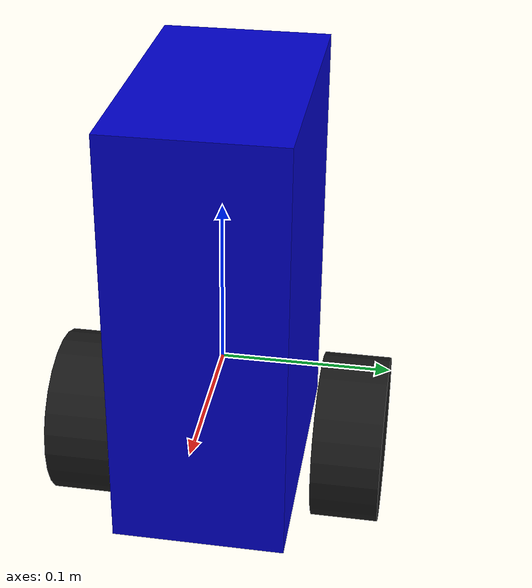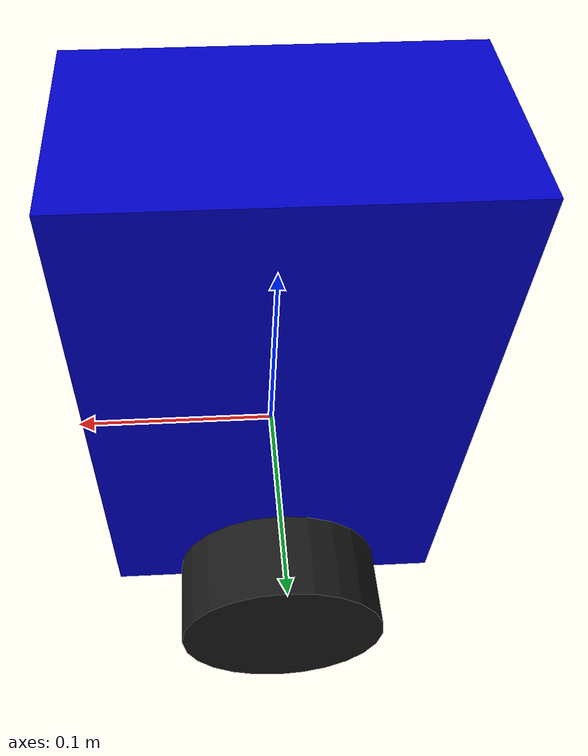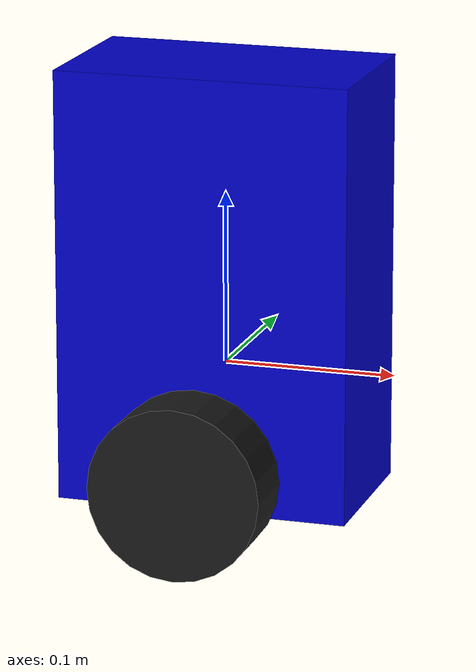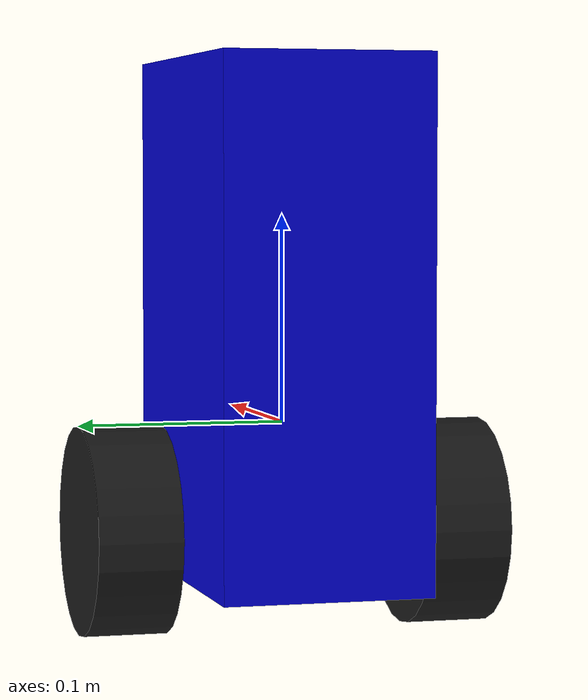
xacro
<?xml version="1.0"?>
<robot name="differential_drive_robot"
       xmlns:xacro="http://www.ros.org/wiki/xacro">

  <xacro:property name="wheel_radius" value="0.05"/>
  <xacro:property name="wheel_width" value="0.04"/>
  <xacro:property name="wheel_mass" value="0.1"/>

  <xacro:property name="bot_mass" value="0.2"/>
  <xacro:property name="bot_chassis_mass" value="0.6"/>

  <xacro:property name="bot_height" value="0.25"/>
  <xacro:property name="bot_length" value="0.17"/>
  <xacro:property name="bot_width" value="0.1"/>

  <!--Inertia Macros-->

  <!--Wheel Inertia-->
  <xacro:macro name="cylinder_inertia" params="m r h">
    <inertial>
      <origin xyz="0 0 0" rpy="0 0 0"/>
      <mass value="${m}"/>
      <inertia
        ixx="${(1/12)*m*(3*r*r+h*h)}"
        ixy="0" ixz="0"
        iyy="${(1/12)*m*(3*r*r+h*h)}"
        iyz="0"
        izz="${(1/2)*m*r*r}"/>
    </inertial>
  </xacro:macro>

  <xacro:macro name="wheel" params="name x_offset y_offset">
    <link name="${name}_wheel">
      <visual>
        <origin xyz="0 0 0" rpy="0 0 0"/>
        <geometry>
          <cylinder radius="${wheel_radius}" length="${wheel_width}"/>
        </geometry>
        <material name="black">
          <color rgba="0.1 0.1 0.1 1"/>
        </material>
      </visual>
      <collision>
        <origin xyz="0 0 0" rpy="0 0 0"/>
        <geometry>
          <cylinder radius="${wheel_radius}" length="${wheel_width}"/>
        </geometry>
      </collision>
      <xacro:cylinder_inertia m="${wheel_mass}"
                              r="${wheel_radius}"
                              h="${wheel_width}"/>
    </link>

    <joint name="${name}_wheel_joint" type="continuous">
      <parent link="base_link"/>
      <child link="${name}_wheel"/>
      <origin xyz="${x_offset} ${y_offset} -0.05" rpy="-1.5707 0 0"/>
      <axis xyz="0 0 1"/>
    </joint>
  </xacro:macro>

  <!--Base_Link_Inertia-->
  <xacro:macro name="box_inertia" params="m x y z cz">
    <inertial>
      <origin xyz="0 0 ${cz}" rpy="0 0 0"/>
      <mass value="${m}"/>
      <inertia
        ixx="${(1/12)*m*(y*y+z*z)}"
        ixy="0" ixz="0"
        iyy="${(1/12)*m*(x*x+z*z)}"
        iyz="0"
        izz="${(1/12)*m*(x*x+y*y)}"/>
    </inertial>
  </xacro:macro>

  <!--Base_Link-->

  <link name="base_link">
    <visual>
      <origin xyz="0 0 0.05" rpy="0 0 0"/>
      <geometry>
        <box size="${bot_length} ${bot_width} ${bot_height}"/>
      </geometry>
      <material name="blue">
        <color rgba="0 0 0.8 1"/>
      </material>
    </visual>
    <collision>
      <origin xyz="0 0 0.05" rpy="0 0 0"/>
      <geometry>
        <box size="${bot_length} ${bot_width} ${bot_height}"/>
      </geometry>
    </collision>
    <xacro:box_inertia m="${bot_chassis_mass}"
                       x="${bot_length}"
                       y="${bot_width}"
                       z="${bot_height}"
                       cz="0.225"/>
  </link>

  <xacro:wheel name="left" x_offset="0" y_offset="${0.08}"/>
  <xacro:wheel name="right" x_offset="0" y_offset="${-0.08}"/>

  <!--Dummy Base Footprint-->
  <link name="base_footprint"/>

  <joint name="base_footprint_joint" type="fixed">
      <parent link="base_footprint"/>
      <child link="base_link"/>
      <origin xyz="0 0 0" rpy="0 0 0"/>
  </joint>

  <!--Gazebo_Plugins-->

  <gazebo>
    <plugin filename="gz-sim-diff-drive-system"
            name="gz::sim::systems::DiffDrive">
      <left_joint>left_wheel_joint</left_joint>
      <right_joint>right_wheel_joint</right_joint>
      <wheel_separation>${2 * 0.08}</wheel_separation>
      <wheel_radius>${wheel_radius}</wheel_radius>
      <odom_publish_frequency>50</odom_publish_frequency>
      <topic>/cmd_vel</topic>
      <odom_topic>/odom</odom_topic>
      <frame_id>odom</frame_id>
      <child_frame_id>base_link</child_frame_id>
    </plugin>
  </gazebo>

  <gazebo reference="base_link">
    <sensor name="imu_sensor" type="imu">
      <always_on>true</always_on>
      <update_rate>100</update_rate>
      <pose>0 0 0 0 0 0</pose>
      <topic>/imu</topic>
      <imu>
        <orientation_reference_frame>
          <localization>ENU</localization>
        </orientation_reference_frame>
      </imu>
    </sensor>
  </gazebo>
</robot>
